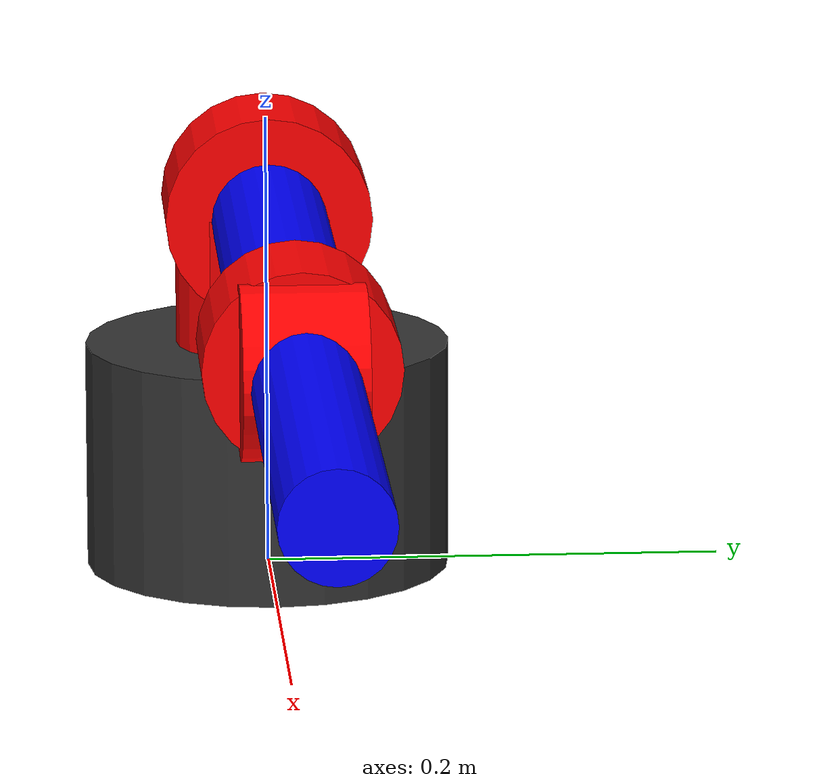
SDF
<?xml version="1.0" ?>
<sdf version="1.7">
  <model name="mechelangelo_arm">
    <static>false</static>

    <!-- =========================
         BASE
         ========================= -->
    <link name="base_link">
      <pose>0 0 0.05 0 0 0</pose>
      <gravity>false</gravity>

      <visual name="base_visual">
        <geometry>
          <cylinder>
            <radius>0.08</radius>
            <length>0.10</length>
          </cylinder>
        </geometry>
        <material>
          <ambient>0.2 0.2 0.2 1</ambient>
          <diffuse>0.2 0.2 0.2 1</diffuse>
        </material>
      </visual>

      <collision name="base_collision">
        <geometry>
          <cylinder>
            <radius>0.08</radius>
            <length>0.10</length>
          </cylinder>
        </geometry>
      </collision>

      <inertial>
        <mass>2.0</mass>
        <inertia>
          <ixx>0.01</ixx>
          <iyy>0.01</iyy>
          <izz>0.01</izz>
          <ixy>0.0</ixy>
          <ixz>0.0</ixz>
          <iyz>0.0</iyz>
        </inertia>
      </inertial>
    </link>

    <!-- =========================
         SHOULDER JOINT 1
         yaw servo body
         ========================= -->
    <link name="joint1_link">
      <pose>0 0 0.13 0 0 0</pose>
      <gravity>false</gravity>

      <visual name="joint1_visual">
        <geometry>
          <cylinder>
            <radius>0.04</radius>
            <length>0.06</length>
          </cylinder>
        </geometry>
        <material>
          <ambient>1 0 0 1</ambient>
          <diffuse>1 0 0 1</diffuse>
        </material>
      </visual>

      <collision name="joint1_collision">
        <geometry>
          <cylinder>
            <radius>0.04</radius>
            <length>0.06</length>
          </cylinder>
        </geometry>
      </collision>

      <inertial>
        <mass>0.30</mass>
        <inertia>
          <ixx>0.0005</ixx>
          <iyy>0.0005</iyy>
          <izz>0.0003</izz>
          <ixy>0.0</ixy>
          <ixz>0.0</ixz>
          <iyz>0.0</iyz>
        </inertia>
      </inertial>
    </link>

    <joint name="joint1" type="revolute">
      <parent>base_link</parent>
      <child>joint1_link</child>
      <pose>0 0 0.08 0 0 0</pose>
      <axis>
        <xyz>0 0 1</xyz>
        <limit>
          <lower>-3.1416</lower>
          <upper>3.1416</upper>
          <effort>20</effort>
          <velocity>1.5</velocity>
        </limit>
        <dynamics>
          <damping>0.1</damping>
        </dynamics>
      </axis>
    </joint>

    <!-- =========================
         SHOULDER JOINT 2
         pitch servo body
         directly attached to joint1
         ========================= -->
    <link name="joint2_link">
      <pose>0 0 0.16 0 1.5708 0</pose>
      <gravity>false</gravity>

      <visual name="joint2_visual">
        <geometry>
          <cylinder>
            <radius>0.045</radius>
            <length>0.06</length>
          </cylinder>
        </geometry>
        <material>
          <ambient>1 0 0 1</ambient>
          <diffuse>1 0 0 1</diffuse>
        </material>
      </visual>

      <collision name="joint2_collision">
        <geometry>
          <cylinder>
            <radius>0.045</radius>
            <length>0.06</length>
          </cylinder>
        </geometry>
      </collision>

      <inertial>
        <mass>0.25</mass>
        <inertia>
          <ixx>0.0004</ixx>
          <iyy>0.0004</iyy>
          <izz>0.0002</izz>
          <ixy>0.0</ixy>
          <ixz>0.0</ixz>
          <iyz>0.0</iyz>
        </inertia>
      </inertial>
    </link>

    <joint name="joint2" type="revolute">
      <parent>joint1_link</parent>
      <child>joint2_link</child>
      <pose>0 0 0.03 0 0 0</pose>
      <axis>
        <xyz>0 1 0</xyz>
        <limit>
          <lower>-3.1416</lower>
          <upper>0</upper>
          <effort>15</effort>
          <velocity>1.5</velocity>
        </limit>
        <dynamics>
          <damping>0.1</damping>
        </dynamics>
      </axis>
    </joint>

    <!-- =========================
         LINK 1
         upper arm
         straight along +X by default
         ========================= -->
    <link name="link1">
      <pose>0.14 0 0.16 0 1.5708 0</pose>
      <gravity>false</gravity>

      <visual name="link1_visual">
        <geometry>
          <cylinder>
            <radius>0.025</radius>
            <length>0.28</length>
          </cylinder>
        </geometry>
        <material>
          <ambient>0 0 1 1</ambient>
          <diffuse>0 0 1 1</diffuse>
        </material>
      </visual>

      <collision name="link1_collision">
        <geometry>
          <cylinder>
            <radius>0.025</radius>
            <length>0.28</length>
          </cylinder>
        </geometry>
      </collision>

      <inertial>
        <mass>0.35</mass>
        <inertia>
          <ixx>0.0020</ixx>
          <iyy>0.0020</iyy>
          <izz>0.0002</izz>
          <ixy>0.0</ixy>
          <ixz>0.0</ixz>
          <iyz>0.0</iyz>
        </inertia>
      </inertial>
    </link>

    <joint name="fixed_joint2_to_link1" type="fixed">
      <parent>joint2_link</parent>
      <child>link1</child>
      <pose>0.14 0 0 0 0 0</pose>
    </joint>

    <!-- =========================
         ELBOW JOINT 3
         pitch servo body
         directly at end of link1
         ========================= -->
    <link name="joint3_link">
      <pose>0.28 0 0.16 0 1.5708 0</pose>
      <gravity>false</gravity>

      <visual name="joint3_visual">
        <geometry>
          <cylinder>
            <radius>0.04</radius>
            <length>0.06</length>
          </cylinder>
        </geometry>
        <material>
          <ambient>1 0 0 1</ambient>
          <diffuse>1 0 0 1</diffuse>
        </material>
      </visual>

      <collision name="joint3_collision">
        <geometry>
          <cylinder>
            <radius>0.04</radius>
            <length>0.06</length>
          </cylinder>
        </geometry>
      </collision>

      <inertial>
        <mass>0.20</mass>
        <inertia>
          <ixx>0.0003</ixx>
          <iyy>0.0003</iyy>
          <izz>0.00015</izz>
          <ixy>0.0</ixy>
          <ixz>0.0</ixz>
          <iyz>0.0</iyz>
        </inertia>
      </inertial>
    </link>

    <joint name="joint3" type="revolute">
      <parent>link1</parent>
      <child>joint3_link</child>
      <pose>0.14 0 0 0 0 0</pose>
      <axis>
        <xyz>1 0 0</xyz>
        <limit>
          <lower>-3.1416</lower>
          <upper>3.1416</upper>
          <effort>10</effort>
          <velocity>1.5</velocity>
        </limit>
        <dynamics>
          <damping>0.1</damping>
        </dynamics>
      </axis>
    </joint>

    <!-- =========================
         ELBOW JOINT 4
         roll servo body
         directly attached to joint3
         ========================= -->
    <link name="joint4_link">
      <pose>0.31 0 0.16 1.5708 0 0</pose>
      <gravity>false</gravity>

      <visual name="joint4_visual">
        <geometry>
          <cylinder>
            <radius>0.035</radius>
            <length>0.05</length>
          </cylinder>
        </geometry>
        <material>
          <ambient>1 0 0 1</ambient>
          <diffuse>1 0 0 1</diffuse>
        </material>
      </visual>

      <collision name="joint4_collision">
        <geometry>
          <cylinder>
            <radius>0.035</radius>
            <length>0.05</length>
          </cylinder>
        </geometry>
      </collision>

      <inertial>
        <mass>0.15</mass>
        <inertia>
          <ixx>0.0002</ixx>
          <iyy>0.0002</iyy>
          <izz>0.0001</izz>
          <ixy>0.0</ixy>
          <ixz>0.0</ixz>
          <iyz>0.0</iyz>
        </inertia>
      </inertial>
    </link>

    <joint name="joint4" type="revolute">
      <parent>joint3_link</parent>
      <child>joint4_link</child>
      <pose>0.03 0 0 0 0 0</pose>
      <axis>
        <xyz>0 1 0</xyz>
        <limit>
          <lower>-1.57</lower>
          <upper>1.57</upper>
          <effort>8</effort>
          <velocity>1.5</velocity>
        </limit>
        <dynamics>
          <damping>0.05</damping>
        </dynamics>
      </axis>
    </joint>

    <!-- =========================
         LINK 2
         lower arm
         straight continuation of link1
         ========================= -->
    <link name="link2">
      <pose>0.43 0 0.16 0 1.5708 0</pose>
      <gravity>false</gravity>

      <visual name="link2_visual">
        <geometry>
          <cylinder>
            <radius>0.022</radius>
            <length>0.24</length>
          </cylinder>
        </geometry>
        <material>
          <ambient>0 0 1 1</ambient>
          <diffuse>0 0 1 1</diffuse>
        </material>
      </visual>

      <collision name="link2_collision">
        <geometry>
          <cylinder>
            <radius>0.022</radius>
            <length>0.24</length>
          </cylinder>
        </geometry>
      </collision>

      <inertial>
        <mass>0.25</mass>
        <inertia>
          <ixx>0.0010</ixx>
          <iyy>0.0010</iyy>
          <izz>0.0001</izz>
          <ixy>0.0</ixy>
          <ixz>0.0</ixz>
          <iyz>0.0</iyz>
        </inertia>
      </inertial>
    </link>

    <joint name="fixed_joint4_to_link2" type="fixed">
      <parent>joint4_link</parent>
      <child>link2</child>
      <pose>0.12 0 0 0 0 0</pose>
    </joint>

  </model>
</sdf>
